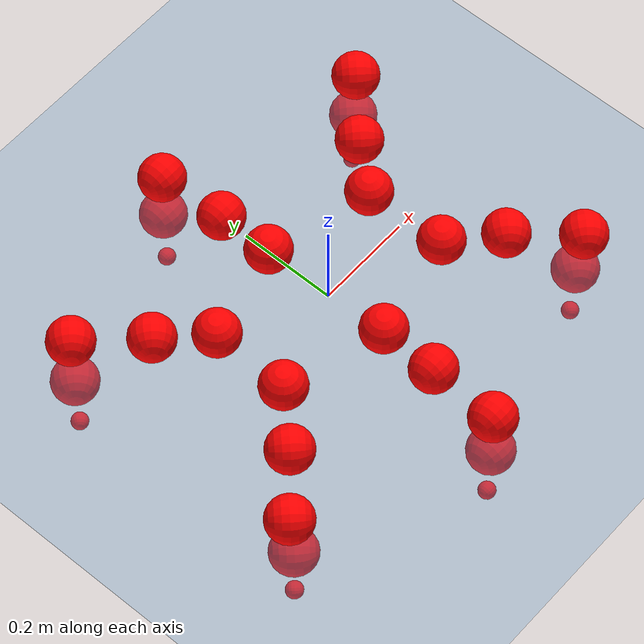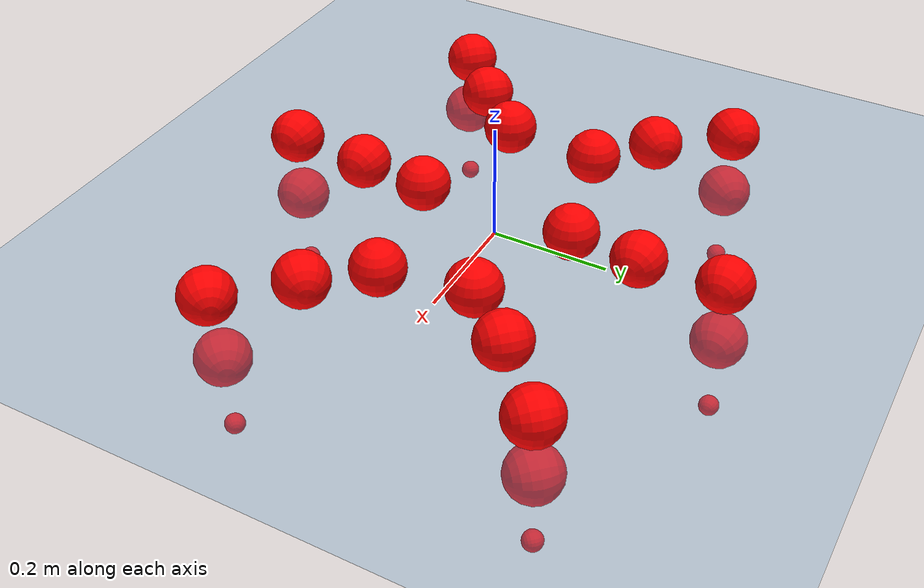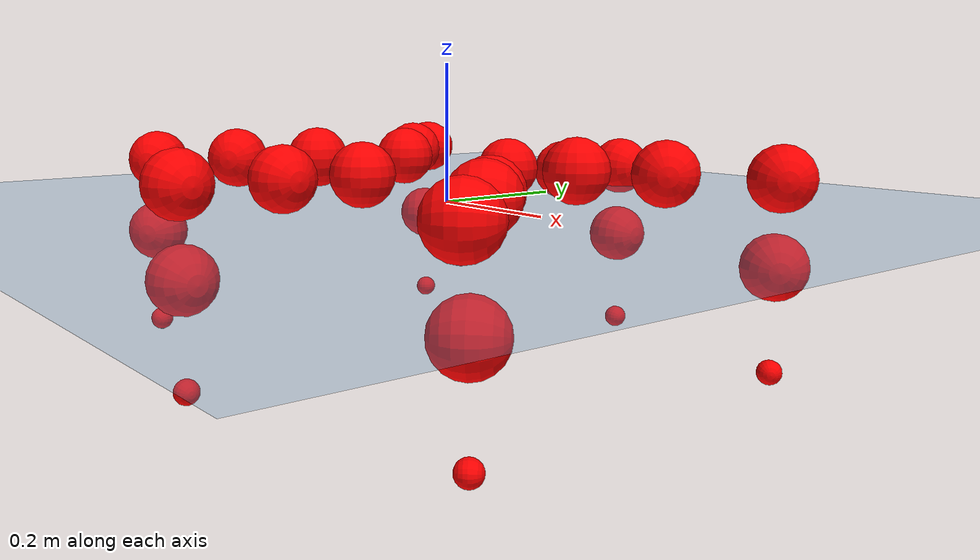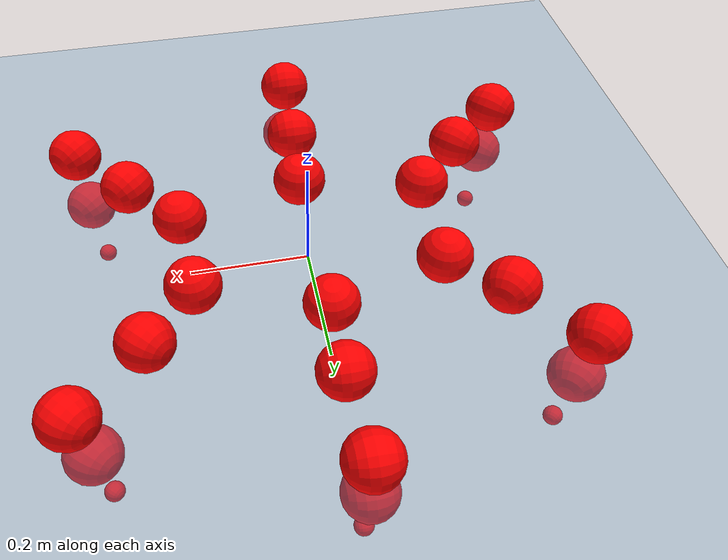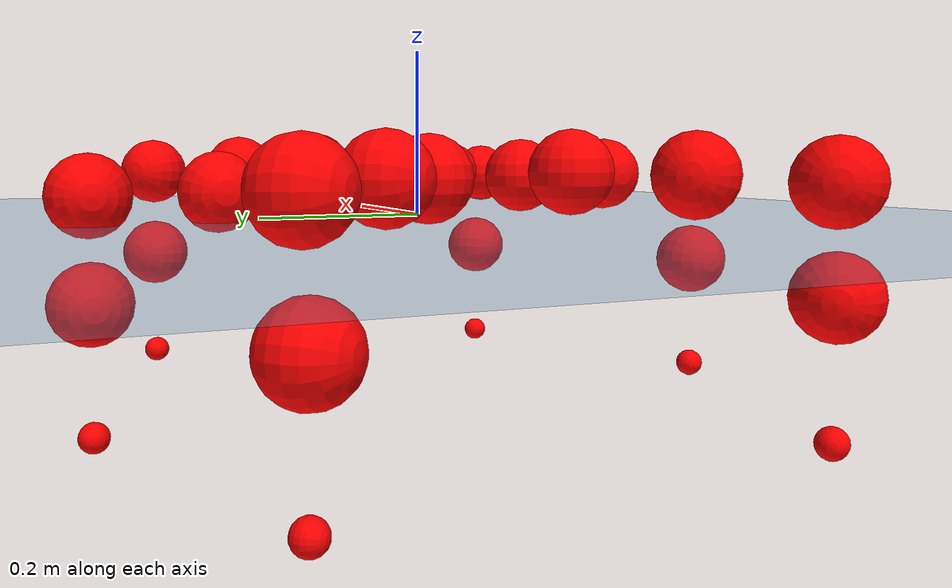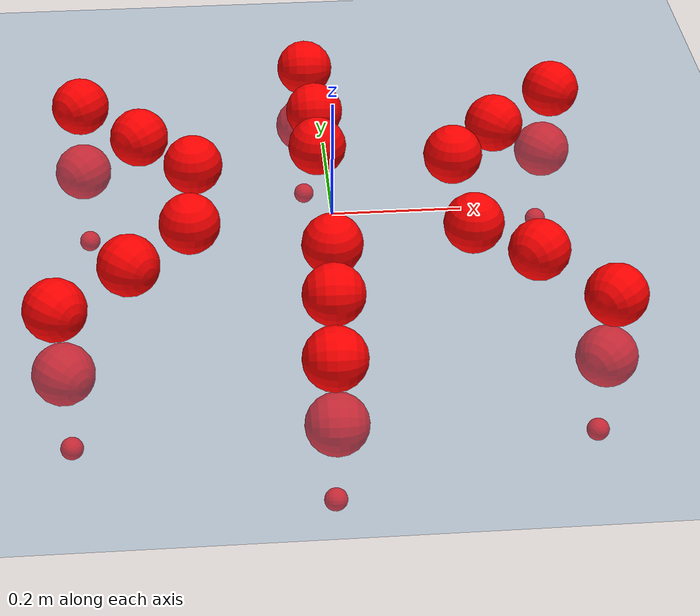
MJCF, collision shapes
<mujoco model="Golem">
  <compiler angle="radian" assetdir="assets" balanceinertia="true" inertiafromgeom="false"/>

  <option timestep="0.005" density="1.2" viscosity="2e-05"/>

  <size nkey="1"/>

  <visual>
    <quality shadowsize="8192"/>
    <map shadowclip="0.5"/>
  </visual>

  <default>
    <default class="/">
      <joint armature="0.01" damping="0.01" frictionloss="0.01"/>
      <geom contype="0" conaffinity="0" group="1" solref="-1000 -80"/>
      <site size="0.01 0.005 0.005" group="5"/>
      <general forcelimited="true" biastype="affine" gainprm="25" biasprm="0 -25 -0.5"/>
      <default class="visual">
        <geom type="mesh" group="2"/>
      </default>
      <default class="collision">
        <geom group="3"/>
      </default>
      <default class="foot">
        <geom size="0.01 0 0" condim="6" group="4" priority="1" solimp="0.015 1 0.01"/>
      </default>
      <default class="reward_collision_sphere">
        <geom group="5" rgba="1 0 0 1"/>
      </default>
    </default>
  </default>

  <asset>
    <texture type="skybox" colorspace="auto" name="//unnamed_texture_0" builtin="gradient" rgb1="0.95 0.95 0.95" rgb2="0.95 0.95 0.95" width="100" height="600"/>
    <texture type="2d" colorspace="auto" name="texplane" builtin="checker" rgb1="0.345 0.575 0.748" rgb2="0.345 0.575 0.748" markrgb="1 1 1" width="512" height="512"/>
    <material name="MatPlane" class="/" texture="texplane" texuniform="true" texrepeat="2 2" specular="0.9"/>
    <mesh name="body" class="/" file="body.stl" scale="0.001 0.001 0.001"/>
    <mesh name="coxa" class="/" file="coxa.stl" scale="0.001 0.001 0.001"/>
    <mesh name="femur" class="/" file="femur.stl" scale="0.001 0.001 0.001"/>
    <mesh name="tibia" class="/" file="tibia.stl" scale="0.001 0.001 0.001"/>
    <mesh name="tarsus" class="/" file="tarsus.stl" scale="0.001 0.001 0.001"/>
  </asset>

  <worldbody>
    <geom name="floor" class="/" size="100 100 0.125" type="plane" group="0" material="MatPlane"/>
    <light name="toplight_shadow" class="/" pos="0 0 5" dir="0.0990148 0.0990148 -0.990148" type="directional" ambient="0.04 0.04 0.04" diffuse="0.55 0.55 0.55" specular="0.12 0.12 0.12"/>
    <light name="toplight_fill" class="/" pos="0 0 5" dir="0.0990148 0.0990148 -0.990148" type="directional" castshadow="false" ambient="0.04 0.04 0.04" diffuse="0.3 0.3 0.3" specular="0.08 0.08 0.08"/>
    <body name="trunk" pos="-0.00844363 -0.00348566 -0.0028527" quat="1 -5.61756e-06 -1.70066e-05 -0.000239213">
      <inertial pos="0.000302226 0.00110497 -0.00452876" quat="0.999959 -0.00128085 0.00160025 0.00880504" mass="6.00979" diaginertia="0.0531929 0.0437476 0.00299119"/>
      <joint name="//unnamed_joint_0" type="free"/>
      <geom name="//unnamed_geom_1" class="/" pos="0 0 0.0502192" quat="1 0 0 0" type="mesh" rgba="0.9 0.9 0.9 1" mesh="body"/>
      <site name="imu" class="/" pos="0.139083 -0.0356025 0.0782946" size="0.0115755"/>
      <camera name="track" class="/" pos="0 -2.65397 0" quat="0.707107 0.707107 0 0" mode="trackcom"/>
      <camera name="ego_camera" class="/" pos="0.176928 0 0.0784674" quat="-0.5 -0.5 0.5 0.5"/>
      <body name="coxa_RR" pos="-0.240258 -0.110949 0.058693" quat="0.382397 -6.20811e-06 3.30115e-05 -0.923998">
        <inertial pos="-0.000978633 0.00913936 0.00187603" quat="0.999706 0.0195202 0.0143071 -0.00176616" mass="0.350311" diaginertia="0.0501013 0.0442692 0.00322252"/>
        <joint name="coxa_joint_RR" class="/" pos="0 0 0" axis="0.00649165 0.00644192 -0.999958" stiffness="0.0384988" range="-3.13461 3.14191" armature="0.015028" damping="0.0104569" frictionloss="0.0118088"/>
        <geom name="//unnamed_geom_2" class="/" type="mesh" rgba="0.2 0.2 0.2 1" mesh="coxa"/>
        <geom name="//unnamed_geom_3" class="reward_collision_sphere" size="0.046302" pos="-0.0408296 0 0"/>
        <body name="femur_RR" pos="0.0886065 0.00275933 -0.00228813" quat="0.500197 -0.499984 0.499864 0.499955">
          <inertial pos="0.00221037 0.00105705 -0.00154573" quat="1 -9.17549e-06 -0.000636349 -0.000563751" mass="0.312542" diaginertia="0.0470071 0.0416394 0.00263398"/>
          <joint name="femur_joint_RR" class="/" pos="0 0 0" axis="2.15048e-05 -0.00167564 -0.999999" stiffness="0.037562" range="-2.99946 3.23236" armature="0.0113623" damping="0" frictionloss="0.00786156"/>
          <geom name="//unnamed_geom_4" class="/" type="mesh" rgba="0.9 0.9 0.9 1" mesh="femur"/>
          <geom name="//unnamed_geom_5" class="reward_collision_sphere" size="0.046302"/>
          <body name="tibia_RR" pos="0.00551616 -0.135348 -0.00927628" quat="-0.00402346 0.99999 0.000617561 -0.00185398">
            <inertial pos="0.00705603 -0.00112412 -0.00201921" quat="0.999962 0.00553917 0.000142437 0.00675139" mass="0.300872" diaginertia="0.0475926 0.0428638 0.0032585"/>
            <joint name="tibia_joint_RR" class="/" pos="0 0 0" axis="-0.0338899 -0.00588454 0.999408" range="-3.1755 3.0638" armature="0.0107639" damping="0.0150079" frictionloss="0.0114141"/>
            <geom name="//unnamed_geom_6" class="/" type="mesh" rgba="0.2 0.2 0.2 1" mesh="tibia"/>
            <geom name="//unnamed_geom_7" class="reward_collision_sphere" size="0.046302"/>
            <body name="tarsus_RR" pos="0.113902 0.00227077 -0.00660082" quat="1 -0.000249267 5.18258e-05 -5.43435e-05">
              <inertial pos="0.0749418 0.000259185 -0.0020151" quat="0.499144 0.500577 0.498674 0.501599" mass="0.307808" diaginertia="0.0477079 0.0408463 0.00295248"/>
              <joint name="tarsus_joint_RR" class="/" pos="0 0 0" axis="-0.00383424 0.00488119 0.999981" range="-3.00084 3.05696" armature="0.0114568" damping="0.0377498" frictionloss="0.0128619"/>
              <geom name="//unnamed_geom_8" class="/" type="mesh" rgba="0.9 0.9 0.9 1" mesh="tarsus"/>
              <geom name="foot_1" class="foot" size="0.0117135" pos="0.15243 0 0" quat="0 -0.707107 0 0.707107"/>
              <geom name="//unnamed_geom_10" class="reward_collision_sphere" size="0.046302"/>
              <geom name="//unnamed_geom_11" class="reward_collision_sphere" size="0.0173632" pos="0.146306 0 0"/>
              <site name="foot_1" class="foot" pos="0.15243 0 0" quat="0 -0.707107 0 0.707107" size="0.0115755"/>
            </body>
          </body>
        </body>
      </body>
      <body name="coxa_RM" pos="-0.00188151 -0.177655 0.0502636" quat="0.706063 -0.00129553 5.73226e-05 -0.708148">
        <inertial pos="-0.0050724 -0.000336721 0.00203864" quat="0.999954 -0.00403502 -0.00780769 0.00387093" mass="0.318324" diaginertia="0.0485241 0.0459035 0.00282449"/>
        <joint name="coxa_joint_RM" class="/" pos="0 0 0" axis="-0.00298702 0.00171191 -0.999994" range="-3.11989 3.15918" armature="0.0109908" damping="0.0343417" frictionloss="0.0174737"/>
        <geom name="//unnamed_geom_12" class="/" type="mesh" rgba="0.2 0.2 0.2 1" mesh="coxa"/>
        <geom name="//unnamed_geom_13" class="reward_collision_sphere" size="0.046302" pos="-0.0408296 0 0"/>
        <body name="femur_RM" pos="0.080445 -0.00650832 0.0010012" quat="0.496794 -0.5021 0.501211 0.499879">
          <inertial pos="0.000677197 0.00134949 0.000109474" quat="0.999994 0.00354222 3.8124e-05 0.000615607" mass="0.268006" diaginertia="0.0414833 0.0392285 0.0026648"/>
          <joint name="femur_joint_RM" class="/" pos="0 0 0" axis="0.014857 -0.0096559 -0.999843" range="-3.09948 3.14289" armature="0.012825" damping="0" frictionloss="0.0114903"/>
          <geom name="//unnamed_geom_14" class="/" type="mesh" rgba="0.9 0.9 0.9 1" mesh="femur"/>
          <geom name="//unnamed_geom_15" class="reward_collision_sphere" size="0.046302"/>
          <body name="tibia_RM" pos="-0.00185699 -0.143125 -0.00896125" quat="0.000792671 1 -0.000210097 -0.000311805">
            <inertial pos="-0.00444992 0.00884414 0.00208084" quat="0.999333 0.0118525 0.0259271 -0.0228158" mass="0.341126" diaginertia="0.0463811 0.0367727 0.00295122"/>
            <joint name="tibia_joint_RM" class="/" pos="0 0 0" axis="-0.00124894 -0.000560612 0.999999" range="-2.99298 2.93666" armature="0.0115833" damping="0.0177745" frictionloss="0.0119979"/>
            <geom name="//unnamed_geom_16" class="/" type="mesh" rgba="0.2 0.2 0.2 1" mesh="tibia"/>
            <geom name="//unnamed_geom_17" class="reward_collision_sphere" size="0.046302"/>
            <body name="tarsus_RM" pos="0.121055 -0.000806987 -0.00413701" quat="1 -3.08694e-05 1.77414e-05 -8.52955e-06">
              <inertial pos="0.0829916 0.00436622 -0.0053715" quat="0.48234 0.47721 0.505879 0.53264" mass="0.278702" diaginertia="0.0512345 0.0433141 0.00321527"/>
              <joint name="tarsus_joint_RM" class="/" pos="0 0 0" axis="-0.00210584 0.00589861 0.99998" stiffness="0.0214132" range="-3.21891 3.13454" armature="0.0107459" damping="0" frictionloss="0.0109818"/>
              <geom name="//unnamed_geom_18" class="/" type="mesh" rgba="0.9 0.9 0.9 1" mesh="tarsus"/>
              <geom name="foot_2" class="foot" size="0.011709" pos="0.15243 0 0" quat="0 -0.707107 0 0.707107"/>
              <geom name="//unnamed_geom_20" class="reward_collision_sphere" size="0.046302"/>
              <geom name="//unnamed_geom_21" class="reward_collision_sphere" size="0.0173632" pos="0.146306 0 0"/>
              <site name="foot_2" class="foot" pos="0.15243 0 0" quat="0 -0.707107 0 0.707107" size="0.0115755"/>
            </body>
          </body>
        </body>
      </body>
      <body name="coxa_RF" pos="0.244589 -0.118946 0.0433137" quat="0.924102 -0.00153159 0.000119461 -0.382143">
        <inertial pos="0.00032571 -0.00296308 0.00196655" quat="0.999995 0.00190632 0.0023373 -0.00100541" mass="0.317873" diaginertia="0.0465648 0.0414724 0.00308644"/>
        <joint name="coxa_joint_RF" class="/" pos="0 0 0" axis="0.00152423 0.00100759 -0.999998" stiffness="0.0111353" range="-3.09978 3.14881" armature="0.0077607" damping="0.0255456" frictionloss="0.0127565"/>
        <geom name="//unnamed_geom_22" class="/" type="mesh" rgba="0.2 0.2 0.2 1" mesh="coxa"/>
        <geom name="//unnamed_geom_23" class="reward_collision_sphere" size="0.046302" pos="-0.0408296 0 0"/>
        <body name="femur_RF" pos="0.0779227 0.00206246 0.00649251" quat="0.500251 -0.499976 0.500074 0.499699">
          <inertial pos="-0.00138274 0.00406258 0.00219618" quat="0.999968 0.00585119 0.00546277 8.52934e-05" mass="0.315936" diaginertia="0.0466641 0.0442019 0.0027564"/>
          <joint name="femur_joint_RF" class="/" pos="0 0 0" axis="-0.000105053 -0.00190916 -0.999998" range="-2.9641 3.13377" armature="0.0158078" damping="0.00308522" frictionloss="0.0082842"/>
          <geom name="//unnamed_geom_24" class="/" type="mesh" rgba="0.9 0.9 0.9 1" mesh="femur"/>
          <geom name="//unnamed_geom_25" class="reward_collision_sphere" size="0.046302"/>
          <body name="tibia_RF" pos="0.00563171 -0.141989 -0.00951399" quat="0.000524655 0.999999 -0.000895836 0.000132917">
            <inertial pos="0.00921996 -0.00165854 -0.00110015" quat="0.999998 0.00170951 0.000407577 0.00128981" mass="0.283142" diaginertia="0.0492938 0.0396015 0.00308521"/>
            <joint name="tibia_joint_RF" class="/" pos="0 0 0" axis="0.0350047 0.0269471 0.999024" range="-3.14793 3.3168" armature="0.0120471" damping="0.0150473" frictionloss="0.0116661"/>
            <geom name="//unnamed_geom_26" class="/" type="mesh" rgba="0.2 0.2 0.2 1" mesh="tibia"/>
            <geom name="//unnamed_geom_27" class="reward_collision_sphere" size="0.046302"/>
            <body name="tarsus_RF" pos="0.122724 -0.00793229 -0.00662048" quat="0.999992 -0.000609912 0.00342786 -0.00212991">
              <inertial pos="0.0808629 0.00110876 0.00107601" quat="0.501471 0.492786 0.506122 0.499529" mass="0.300589" diaginertia="0.0471414 0.0403463 0.00283259"/>
              <joint name="tarsus_joint_RF" class="/" pos="0 0 0" axis="0.00491899 -0.0179766 0.999826" stiffness="0.00815256" range="-3.11614 3.12908" armature="0.00960843" damping="0.000119621" frictionloss="0.0130301"/>
              <geom name="//unnamed_geom_28" class="/" type="mesh" rgba="0.9 0.9 0.9 1" mesh="tarsus"/>
              <geom name="foot_3" class="foot" size="0.00924658" pos="0.15243 0 0" quat="0 -0.707107 0 0.707107"/>
              <geom name="//unnamed_geom_30" class="reward_collision_sphere" size="0.046302"/>
              <geom name="//unnamed_geom_31" class="reward_collision_sphere" size="0.0173632" pos="0.146306 0 0"/>
              <site name="foot_3" class="foot" pos="0.15243 0 0" quat="0 -0.707107 0 0.707107" size="0.0115755"/>
            </body>
          </body>
        </body>
      </body>
      <body name="coxa_LR" pos="-0.23332 0.110649 0.0531001" quat="0.382792 0.000296805 0.000789746 0.923834">
        <inertial pos="0.00794187 -0.00252847 0.00978854" quat="0.999006 0.0226498 -0.018821 -0.0334528" mass="0.307127" diaginertia="0.044734 0.0337297 0.00277573"/>
        <joint name="coxa_joint_LR" class="/" pos="0 0 0" axis="0.00491342 -0.0405502 -0.999165" range="-3.14189 3.1945" armature="0.0135507" damping="0.00144027" frictionloss="0.0150485"/>
        <geom name="//unnamed_geom_32" class="/" type="mesh" rgba="0.2 0.2 0.2 1" mesh="coxa"/>
        <geom name="//unnamed_geom_33" class="reward_collision_sphere" size="0.046302" pos="-0.0408296 0 0"/>
        <body name="femur_LR" pos="0.0753051 0.00348882 0.00282382" quat="0.500006 -0.500039 0.499953 0.500003">
          <inertial pos="0.00103216 0.00195023 -0.00179919" quat="0.999885 0.0146917 0.00309004 -0.00232595" mass="0.310515" diaginertia="0.0482409 0.0387742 0.00295797"/>
          <joint name="femur_joint_LR" class="/" pos="0 0 0" axis="0.0163102 -0.00704681 0.999842" range="-3.14028 3.09831" armature="0.0121654" damping="0.0185967" frictionloss="0.0170094"/>
          <geom name="//unnamed_geom_34" class="/" type="mesh" rgba="0.9 0.9 0.9 1" mesh="femur"/>
          <geom name="//unnamed_geom_35" class="reward_collision_sphere" size="0.046302"/>
          <body name="tibia_LR" pos="0.00521708 -0.144865 -0.00697842" quat="-0.00181841 0.999993 -0.00339052 0.000256079">
            <inertial pos="0.00163394 0.00208193 -6.05208e-05" quat="0.999973 0.000808297 0.00125323 -0.00720886" mass="0.29923" diaginertia="0.0464156 0.0398705 0.00281772"/>
            <joint name="tibia_joint_LR" class="/" pos="0 0 0" axis="0.0147079 0.00659426 -0.99987" stiffness="0.0019974" range="-3.08646 3.25763" armature="0.0105086" damping="0.00114036" frictionloss="0.0127557"/>
            <geom name="//unnamed_geom_36" class="/" type="mesh" rgba="0.2 0.2 0.2 1" mesh="tibia"/>
            <geom name="//unnamed_geom_37" class="reward_collision_sphere" size="0.046302"/>
            <body name="tarsus_LR" pos="0.126752 0.000217902 -0.00578467" quat="0.999992 -0.0020427 -0.0033617 0.00118224">
              <inertial pos="0.072265 0.000300757 0.00911728" quat="0.497889 0.499272 0.502092 0.500738" mass="0.324448" diaginertia="0.0468066 0.0435707 0.00288632"/>
              <joint name="tarsus_joint_LR" class="/" pos="0 0 0" axis="0.022751 -0.028616 -0.999332" range="-3.00886 3.26988" armature="0.0127397" damping="0.014762" frictionloss="0.0111665"/>
              <geom name="//unnamed_geom_38" class="/" type="mesh" rgba="0.9 0.9 0.9 1" mesh="tarsus"/>
              <geom name="foot_4" class="foot" size="0.0101146" pos="0.15243 0 0" quat="0.707107 0 -0.707107 0"/>
              <geom name="//unnamed_geom_40" class="reward_collision_sphere" size="0.046302"/>
              <geom name="//unnamed_geom_41" class="reward_collision_sphere" size="0.0173632" pos="0.146306 0 0"/>
              <site name="foot_4" class="foot" pos="0.15243 0 0" quat="0.707107 0 -0.707107 0" size="0.0115755"/>
            </body>
          </body>
        </body>
      </body>
      <body name="coxa_LM" pos="-0.00578405 0.175506 0.0437512" quat="0.706755 -0.000153462 -0.000827517 0.707458">
        <inertial pos="0.000520899 0.000664076 0.00446791" quat="0.99979 -0.0106516 -0.00423073 -0.0169921" mass="0.31249" diaginertia="0.0488736 0.0424757 0.0030251"/>
        <joint name="coxa_joint_LM" class="/" pos="0 0 0" axis="-0.00283005 0.00738615 -0.999969" stiffness="0.0194563" range="-3.26834 3.18222" armature="0.0104994" damping="0" frictionloss="0.00814516"/>
        <geom name="//unnamed_geom_42" class="/" type="mesh" rgba="0.2 0.2 0.2 1" mesh="coxa"/>
        <geom name="//unnamed_geom_43" class="reward_collision_sphere" size="0.046302" pos="-0.0408296 0 0"/>
        <body name="femur_LM" pos="0.0771042 -0.00296834 -0.00879108" quat="0.500687 -0.501394 0.498088 0.499825">
          <inertial pos="-0.00221089 0.00653001 -0.00959436" quat="0.999125 -0.0215525 0.00960284 0.0345259" mass="0.310342" diaginertia="0.0452624 0.0464776 0.00294648"/>
          <joint name="femur_joint_LM" class="/" pos="0 0 0" axis="0.00559332 0.0190351 0.999803" range="-3.14918 3.2604" armature="0.0098271" damping="0.020286" frictionloss="0.0117501"/>
          <geom name="//unnamed_geom_44" class="/" type="mesh" rgba="0.9 0.9 0.9 1" mesh="femur"/>
          <geom name="//unnamed_geom_45" class="reward_collision_sphere" size="0.046302"/>
          <body name="tibia_LM" pos="0.00246812 -0.140709 0.00692088" quat="-0.00476483 0.999988 -0.000115615 -0.000629102">
            <inertial pos="0.000426647 0.0100148 -0.000340408" quat="0.999773 0.00811508 -0.0193463 -0.00363091" mass="0.31478" diaginertia="0.0465657 0.0374939 0.0029677"/>
            <joint name="tibia_joint_LM" class="/" pos="0 0 0" axis="0.0155135 0.00324992 -0.999874" stiffness="0.0052317" range="-3.12291 3.13343" armature="0.00759846" damping="0.0512761" frictionloss="0.0132045"/>
            <geom name="//unnamed_geom_46" class="/" type="mesh" rgba="0.2 0.2 0.2 1" mesh="tibia"/>
            <geom name="//unnamed_geom_47" class="reward_collision_sphere" size="0.046302"/>
            <body name="tarsus_LM" pos="0.116838 0.000208027 -0.0038924" quat="0.999987 -0.00432724 -0.00210285 -0.00161776">
              <inertial pos="0.0862985 -0.00149868 0.00284692" quat="0.49989 0.500285 0.499252 0.500572" mass="0.327467" diaginertia="0.053029 0.0455179 0.00310969"/>
              <joint name="tarsus_joint_LM" class="/" pos="0 0 0" axis="-0.00367683 -0.00153112 -0.999992" stiffness="0.0229378" range="-3.32972 3.14796" armature="0.00722818" damping="0.0565919" frictionloss="0.0108269"/>
              <geom name="//unnamed_geom_48" class="/" type="mesh" rgba="0.9 0.9 0.9 1" mesh="tarsus"/>
              <geom name="foot_5" class="foot" size="0.0112014" pos="0.15243 0 0" quat="0.707107 0 -0.707107 0"/>
              <geom name="//unnamed_geom_50" class="reward_collision_sphere" size="0.046302"/>
              <geom name="//unnamed_geom_51" class="reward_collision_sphere" size="0.0173632" pos="0.146306 0 0"/>
              <site name="foot_5" class="foot" pos="0.15243 0 0" quat="0.707107 0 -0.707107 0" size="0.0115755"/>
            </body>
          </body>
        </body>
      </body>
      <body name="coxa_LF" pos="0.232579 0.101901 0.0588817" quat="0.92386 0.000729759 -0.000811909 0.382729">
        <inertial pos="-0.00109124 0.00171846 0.00126091" quat="0.999729 -0.0199123 0.0114239 -0.00374382" mass="0.358203" diaginertia="0.0531125 0.0462241 0.00323086"/>
        <joint name="coxa_joint_LF" class="/" pos="0 0 0" axis="0.00180296 -0.000975113 -0.999998" stiffness="0.0251422" range="-3.10373 2.95038" armature="0.00768583" damping="0.0577298" frictionloss="0.0141304"/>
        <geom name="//unnamed_geom_52" class="/" type="mesh" rgba="0.2 0.2 0.2 1" mesh="coxa"/>
        <geom name="//unnamed_geom_53" class="reward_collision_sphere" size="0.046302" pos="-0.0408296 0 0"/>
        <body name="femur_LF" pos="0.0784132 0.00839815 -0.0037167" quat="0.502065 -0.498307 0.501851 0.497762">
          <inertial pos="-0.00920362 -0.000777908 0.00188352" quat="0.999999 -0.000305729 -0.00151546 -9.65665e-05" mass="0.304985" diaginertia="0.0463212 0.0404382 0.00312172"/>
          <joint name="femur_joint_LF" class="/" pos="0 0 0" axis="-0.00587245 0.000686346 0.999983" range="-3.21701 3.16228" armature="0.00768657" damping="0" frictionloss="0.0112962"/>
          <geom name="//unnamed_geom_54" class="/" type="mesh" rgba="0.9 0.9 0.9 1" mesh="femur"/>
          <geom name="//unnamed_geom_55" class="reward_collision_sphere" size="0.046302"/>
          <body name="tibia_LF" pos="0.00425131 -0.151112 -0.00382211" quat="0.000958821 1 1.37087e-05 0.000200036">
            <inertial pos="7.58177e-05 -0.00523979 -0.00169565" quat="1 -0.000118646 0.000180272 0.000510745" mass="0.320737" diaginertia="0.0470454 0.0425186 0.00298692"/>
            <joint name="tibia_joint_LF" class="/" pos="0 0 0" axis="-0.00306204 -0.00212626 -0.999993" stiffness="0.0196184" range="-3.12799 3.17827" armature="0.0139702" damping="0.0304225" frictionloss="0.0101201"/>
            <geom name="//unnamed_geom_56" class="/" type="mesh" rgba="0.2 0.2 0.2 1" mesh="tibia"/>
            <geom name="//unnamed_geom_57" class="reward_collision_sphere" size="0.046302"/>
            <body name="tarsus_LF" pos="0.120231 -0.00429846 -0.00446649" quat="0.999991 0.00219337 0.00353854 -0.000720096">
              <inertial pos="0.0821256 0.00296427 0.00230828" quat="0.511289 0.486139 0.513437 0.488503" mass="0.299602" diaginertia="0.0479615 0.0381393 0.00288903"/>
              <joint name="tarsus_joint_LF" class="/" pos="0 0 0" axis="-0.00754953 0.00873616 -0.999933" range="-3.027 3.09351" armature="0.0117302" damping="0.0547094" frictionloss="0.010398"/>
              <geom name="//unnamed_geom_58" class="/" type="mesh" rgba="0.9 0.9 0.9 1" mesh="tarsus"/>
              <geom name="foot_6" class="foot" size="0.0111809" pos="0.15243 0 0" quat="0.707107 0 -0.707107 0"/>
              <geom name="//unnamed_geom_60" class="reward_collision_sphere" size="0.046302"/>
              <geom name="//unnamed_geom_61" class="reward_collision_sphere" size="0.0173632" pos="0.146306 0 0"/>
              <site name="foot_6" class="foot" pos="0.15243 0 0" quat="0.707107 0 -0.707107 0" size="0.0115755"/>
            </body>
          </body>
        </body>
      </body>
    </body>
  </worldbody>

  <contact>
    <pair class="/" geom1="floor" geom2="foot_1" name="//unnamed_contact_0"/>
    <pair class="/" geom1="floor" geom2="foot_2" name="//unnamed_contact_1"/>
    <pair class="/" geom1="floor" geom2="foot_3" name="//unnamed_contact_2"/>
    <pair class="/" geom1="floor" geom2="foot_4" name="//unnamed_contact_3"/>
    <pair class="/" geom1="floor" geom2="foot_5" name="//unnamed_contact_4"/>
    <pair class="/" geom1="floor" geom2="foot_6" name="//unnamed_contact_5"/>
  </contact>

  <actuator>
    <general name="coxa_joint_RR" class="/" joint="coxa_joint_RR" forcerange="-9.07882 9.07882" gainprm="27.5624" biasprm="0 -27.5624 -0.54264"/>
    <general name="femur_joint_RR" class="/" joint="femur_joint_RR" forcerange="-8.64789 8.64789" gainprm="27.5624" biasprm="0 -27.5624 -0.54264"/>
    <general name="tibia_joint_RR" class="/" joint="tibia_joint_RR" forcerange="-8.67929 8.67929" gainprm="27.5624" biasprm="0 -27.5624 -0.54264"/>
    <general name="tarsus_joint_RR" class="/" joint="tarsus_joint_RR" forcerange="-6.71558 6.71558" gainprm="27.5624" biasprm="0 -27.5624 -0.54264"/>
    <general name="coxa_joint_RM" class="/" joint="coxa_joint_RM" forcerange="-11.2725 11.2725" gainprm="27.5624" biasprm="0 -27.5624 -0.54264"/>
    <general name="femur_joint_RM" class="/" joint="femur_joint_RM" forcerange="-8.11255 8.11255" gainprm="27.5624" biasprm="0 -27.5624 -0.54264"/>
    <general name="tibia_joint_RM" class="/" joint="tibia_joint_RM" forcerange="-9.64855 9.64855" gainprm="27.5624" biasprm="0 -27.5624 -0.54264"/>
    <general name="tarsus_joint_RM" class="/" joint="tarsus_joint_RM" forcerange="-9.08288 9.08288" gainprm="27.5624" biasprm="0 -27.5624 -0.54264"/>
    <general name="coxa_joint_RF" class="/" joint="coxa_joint_RF" forcerange="-11.0129 11.0129" gainprm="27.5624" biasprm="0 -27.5624 -0.54264"/>
    <general name="femur_joint_RF" class="/" joint="femur_joint_RF" forcerange="-9.4041 9.4041" gainprm="27.5624" biasprm="0 -27.5624 -0.54264"/>
    <general name="tibia_joint_RF" class="/" joint="tibia_joint_RF" forcerange="-11.4418 11.4418" gainprm="27.5624" biasprm="0 -27.5624 -0.54264"/>
    <general name="tarsus_joint_RF" class="/" joint="tarsus_joint_RF" forcerange="-7.61184 7.61184" gainprm="27.5624" biasprm="0 -27.5624 -0.54264"/>
    <general name="coxa_joint_LR" class="/" joint="coxa_joint_LR" forcerange="-8.43904 8.43904" gainprm="27.5624" biasprm="0 -27.5624 -0.54264"/>
    <general name="femur_joint_LR" class="/" joint="femur_joint_LR" forcerange="-9.06791 9.06791" gainprm="27.5624" biasprm="0 -27.5624 -0.54264"/>
    <general name="tibia_joint_LR" class="/" joint="tibia_joint_LR" forcerange="-7.82982 7.82982" gainprm="27.5624" biasprm="0 -27.5624 -0.54264"/>
    <general name="tarsus_joint_LR" class="/" joint="tarsus_joint_LR" forcerange="-8.20871 8.20871" gainprm="27.5624" biasprm="0 -27.5624 -0.54264"/>
    <general name="coxa_joint_LM" class="/" joint="coxa_joint_LM" forcerange="-6.44611 6.44611" gainprm="27.5624" biasprm="0 -27.5624 -0.54264"/>
    <general name="femur_joint_LM" class="/" joint="femur_joint_LM" forcerange="-8.42488 8.42488" gainprm="27.5624" biasprm="0 -27.5624 -0.54264"/>
    <general name="tibia_joint_LM" class="/" joint="tibia_joint_LM" forcerange="-7.82013 7.82013" gainprm="27.5624" biasprm="0 -27.5624 -0.54264"/>
    <general name="tarsus_joint_LM" class="/" joint="tarsus_joint_LM" forcerange="-9.07942 9.07942" gainprm="27.5624" biasprm="0 -27.5624 -0.54264"/>
    <general name="coxa_joint_LF" class="/" joint="coxa_joint_LF" forcerange="-11.541 11.541" gainprm="27.5624" biasprm="0 -27.5624 -0.54264"/>
    <general name="femur_joint_LF" class="/" joint="femur_joint_LF" forcerange="-8.93823 8.93823" gainprm="27.5624" biasprm="0 -27.5624 -0.54264"/>
    <general name="tibia_joint_LF" class="/" joint="tibia_joint_LF" forcerange="-8.71153 8.71153" gainprm="27.5624" biasprm="0 -27.5624 -0.54264"/>
    <general name="tarsus_joint_LF" class="/" joint="tarsus_joint_LF" forcerange="-9.42187 9.42187" gainprm="27.5624" biasprm="0 -27.5624 -0.54264"/>
  </actuator>

  <sensor>
    <gyro site="imu" name="imu_angular_velocity"/>
    <velocimeter site="imu" name="imu_linear_velocity"/>
    <framelinvel objtype="site" objname="foot_1" name="foot_1_global_linear_velocity"/>
    <framelinvel objtype="site" objname="foot_2" name="foot_2_global_linear_velocity"/>
    <framelinvel objtype="site" objname="foot_3" name="foot_3_global_linear_velocity"/>
    <framelinvel objtype="site" objname="foot_4" name="foot_4_global_linear_velocity"/>
    <framelinvel objtype="site" objname="foot_5" name="foot_5_global_linear_velocity"/>
    <framelinvel objtype="site" objname="foot_6" name="foot_6_global_linear_velocity"/>
  </sensor>

  <keyframe>
    <key name="home" qpos="0 0 0.1457 1 0 0 0 0 0 0 0 0 0 0 0 0 0 0 0 0 0 0 0 0 0 0 0 0 0 0 0"/>
  </keyframe>
</mujoco>
